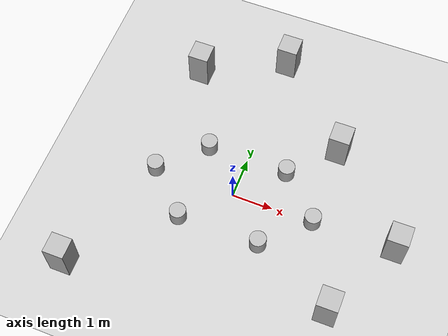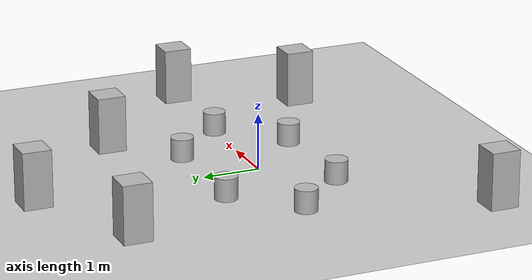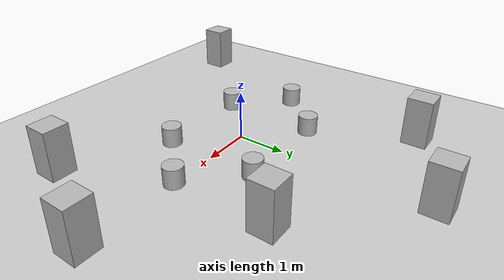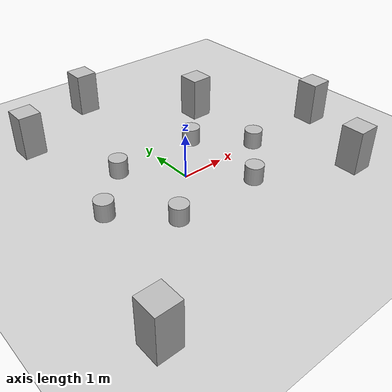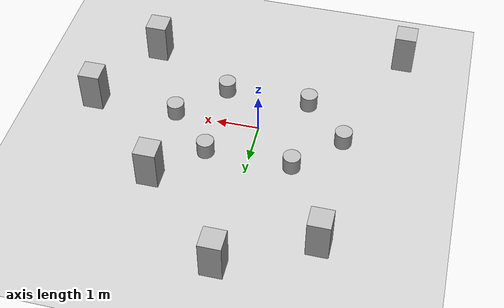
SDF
<?xml version="1.0"?>
<sdf version="1.9">
  <world name="dynamic_obstacle_dense">
    <gravity>0 0 -9.8</gravity>

    <model name="ground_plane">
      <static>true</static>
      <link name="link">
        <collision name="collision">
          <geometry>
            <plane>
              <normal>0 0 1</normal>
              <size>30 30</size>
            </plane>
          </geometry>
        </collision>
        <visual name="visual">
          <geometry>
            <plane>
              <normal>0 0 1</normal>
              <size>30 30</size>
            </plane>
          </geometry>
        </visual>
      </link>
    </model>

    <model name="obstacle_01"><pose>2 2 0.5 0 0 0</pose><link name="link"><collision name="collision"><geometry><box><size>0.5 0.5 1.0</size></box></geometry></collision><visual name="visual"><geometry><box><size>0.5 0.5 1.0</size></box></geometry></visual></link></model>
    <model name="obstacle_02"><pose>3 -2 0.5 0 0 0</pose><link name="link"><collision name="collision"><geometry><box><size>0.5 0.5 1.0</size></box></geometry></collision><visual name="visual"><geometry><box><size>0.5 0.5 1.0</size></box></geometry></visual></link></model>
    <model name="obstacle_03"><pose>-2 3 0.5 0 0 0</pose><link name="link"><collision name="collision"><geometry><box><size>0.5 0.5 1.0</size></box></geometry></collision><visual name="visual"><geometry><box><size>0.5 0.5 1.0</size></box></geometry></visual></link></model>
    <model name="obstacle_04"><pose>-3 -3 0.5 0 0 0</pose><link name="link"><collision name="collision"><geometry><box><size>0.5 0.5 1.0</size></box></geometry></collision><visual name="visual"><geometry><box><size>0.5 0.5 1.0</size></box></geometry></visual></link></model>
    <model name="obstacle_05"><pose>0 4 0.5 0 0 0</pose><link name="link"><collision name="collision"><geometry><box><size>0.5 0.5 1.0</size></box></geometry></collision><visual name="visual"><geometry><box><size>0.5 0.5 1.0</size></box></geometry></visual></link></model>
    <model name="obstacle_06"><pose>4 0 0.5 0 0 0</pose><link name="link"><collision name="collision"><geometry><box><size>0.5 0.5 1.0</size></box></geometry></collision><visual name="visual"><geometry><box><size>0.5 0.5 1.0</size></box></geometry></visual></link></model>

    <model name="moving_01"><pose>1 1 0.2 0 0 0</pose><link name="link"><collision name="collision"><geometry><cylinder><radius>0.2</radius><length>0.4</length></cylinder></geometry></collision><visual name="visual"><geometry><cylinder><radius>0.2</radius><length>0.4</length></cylinder></geometry></visual></link></model>
    <model name="moving_02"><pose>1 -1 0.2 0 0 0</pose><link name="link"><collision name="collision"><geometry><cylinder><radius>0.2</radius><length>0.4</length></cylinder></geometry></collision><visual name="visual"><geometry><cylinder><radius>0.2</radius><length>0.4</length></cylinder></geometry></visual></link></model>
    <model name="moving_03"><pose>-1 1 0.2 0 0 0</pose><link name="link"><collision name="collision"><geometry><cylinder><radius>0.2</radius><length>0.4</length></cylinder></geometry></collision><visual name="visual"><geometry><cylinder><radius>0.2</radius><length>0.4</length></cylinder></geometry></visual></link></model>
    <model name="moving_04"><pose>-1 -1 0.2 0 0 0</pose><link name="link"><collision name="collision"><geometry><cylinder><radius>0.2</radius><length>0.4</length></cylinder></geometry></collision><visual name="visual"><geometry><cylinder><radius>0.2</radius><length>0.4</length></cylinder></geometry></visual></link></model>
    <model name="moving_05"><pose>2 0 0.2 0 0 0</pose><link name="link"><collision name="collision"><geometry><cylinder><radius>0.2</radius><length>0.4</length></cylinder></geometry></collision><visual name="visual"><geometry><cylinder><radius>0.2</radius><length>0.4</length></cylinder></geometry></visual></link></model>
    <model name="moving_06"><pose>-2 0 0.2 0 0 0</pose><link name="link"><collision name="collision"><geometry><cylinder><radius>0.2</radius><length>0.4</length></cylinder></geometry></collision><visual name="visual"><geometry><cylinder><radius>0.2</radius><length>0.4</length></cylinder></geometry></visual></link></model>
  </world>
</sdf>
